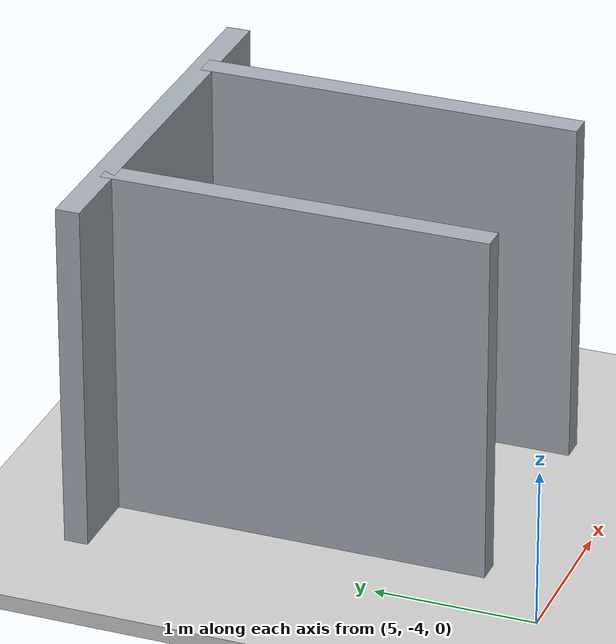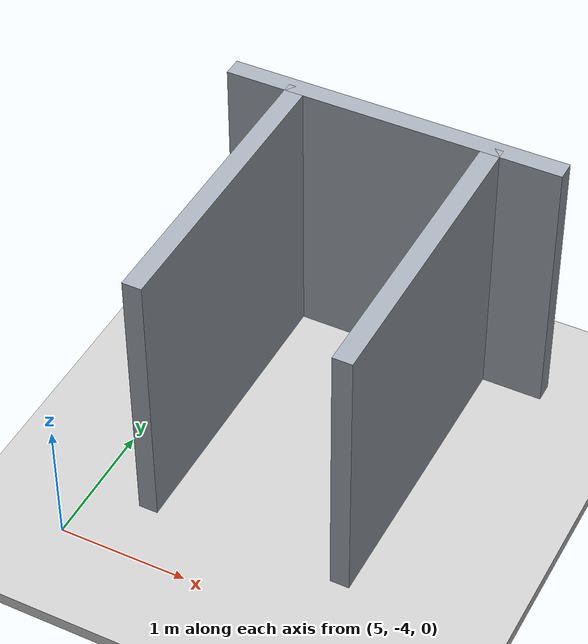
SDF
<sdf version="1.9">
 <world name="default">
  <model name="ground_plane">
   <static>true</static>
   <pose>5.15 0 -0.05 0 0 0</pose>
   <link name="body">
    <collision name="collision"><geometry><box><size>14.3 12 0.1</size></box></geometry></collision>
    <visual name="visual">
     <geometry><box><size>14.3 12 0.1</size></box></geometry>
     <material><ambient>0.8 0.8 0.8 1</ambient><diffuse>0.8 0.8 0.8 1</diffuse></material>
    </visual>
   </link>
  </model>
  <model name="room_-1_1_1">
   <static>true</static>
   <pose>5.45 -2.3499999999999996 1.1 0 0 0</pose>
   <link name="body">
    <collision name="collision"><geometry><box><size>0.15 2.4 2.2</size></box></geometry></collision>
    <visual name="visual">
     <geometry><box><size>0.15 2.4 2.2</size></box></geometry>
     <material><ambient>0.65 0.68 0.72 1</ambient><diffuse>0.65 0.68 0.72 1</diffuse></material>
    </visual>
   </link>
  </model>
  <model name="hall_-1_2">
   <static>true</static>
   <pose>6.2250000000000005 -1.15 1.1 0 0 0</pose>
   <link name="body">
    <collision name="collision">
     <geometry><box><size>2.6500000000000004 0.15 2.2</size></box></geometry>
    </collision>
    <visual name="visual">
     <geometry><box><size>2.6500000000000004 0.15 2.2</size></box></geometry>
     <material><ambient>0.65 0.68 0.72 1</ambient><diffuse>0.65 0.68 0.72 1</diffuse></material>
    </visual>
   </link>
  </model>
  <model name="room_-1_2_-1">
   <static>true</static>
   <pose>7.000000000000001 -2.3499999999999996 1.1 0 0 0</pose>
   <link name="body">
    <collision name="collision"><geometry><box><size>0.15 2.4 2.2</size></box></geometry></collision>
    <visual name="visual">
     <geometry><box><size>0.15 2.4 2.2</size></box></geometry>
     <material><ambient>0.65 0.68 0.72 1</ambient><diffuse>0.65 0.68 0.72 1</diffuse></material>
    </visual>
   </link>
  </model>
 </world>
</sdf>
